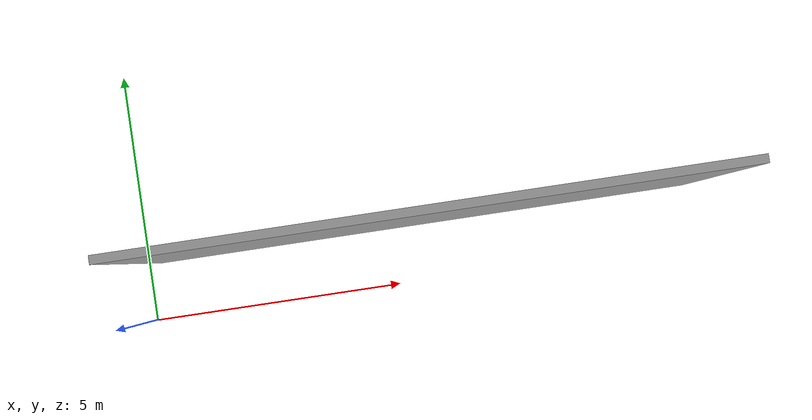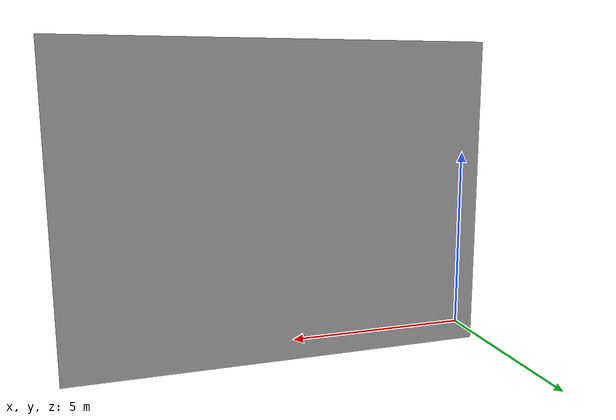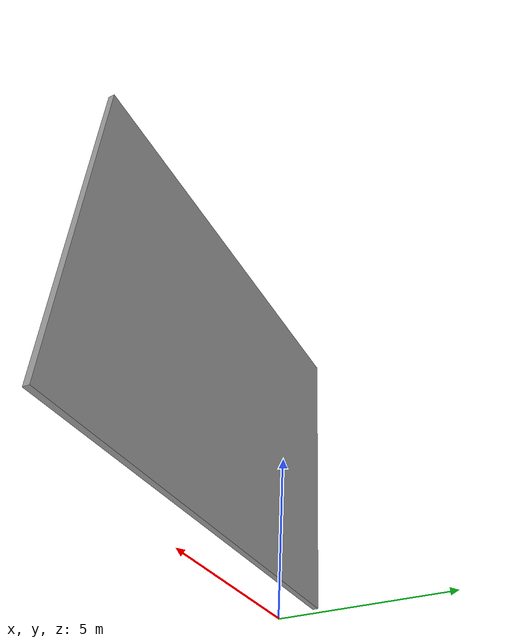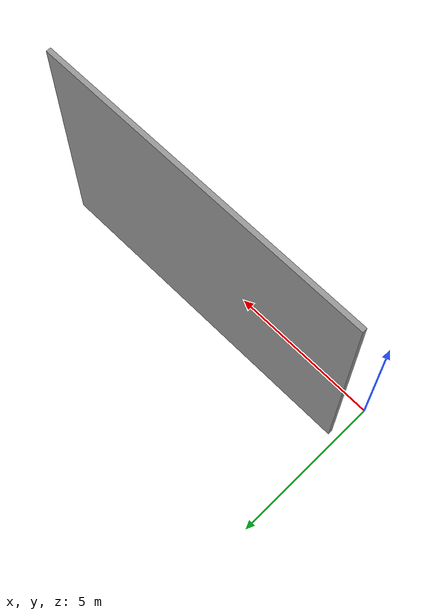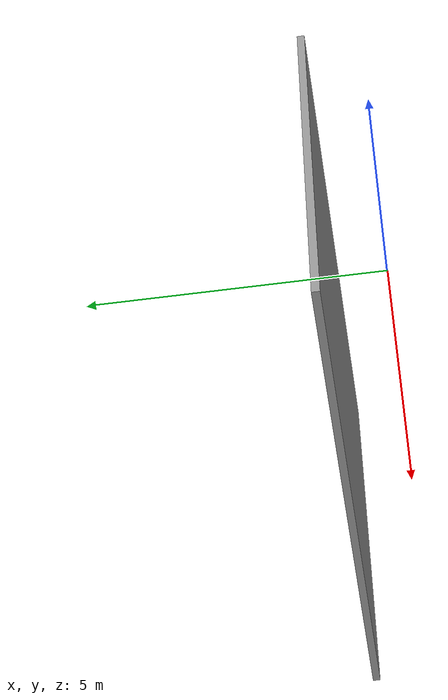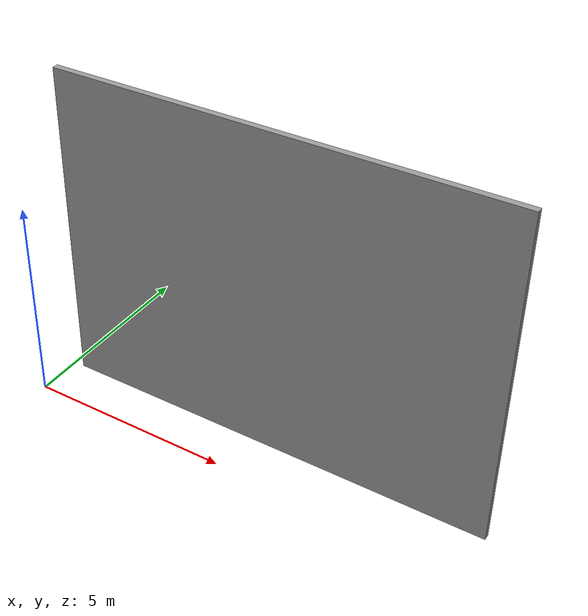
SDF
<?xml version='1.0'?>
<sdf version='1.7'>
  <model name='simple_wall'>
    <pose>5.5055 0.6425 0 0 -0 0</pose>
    <link name='Wall_5'>
      <collision name='Wall_5_Collision'>
        <geometry>
          <box>
            <size>10.75 0.15 8</size>
          </box>
        </geometry>
        <pose>0 0 4 0 -0 0</pose>
      </collision>
      <visual name='Wall_5_Visual'>
        <pose>0 0 4 0 -0 0</pose>
        <geometry>
          <box>
            <size>10.75 0.15 8</size>
          </box>
        </geometry>
        <material>
          <script>
            <uri>file://media/materials/scripts/gazebo.material</uri>
            <name>Gazebo/Grey</name>
          </script>
          <ambient>1 1 1 1</ambient>
        </material>
        <meta>
          <layer>0</layer>
        </meta>
      </visual>
      <pose>0.1305 0.5675 0 0 -0 3.14159</pose>
    </link>
    <static>1</static>
  </model>
</sdf>
